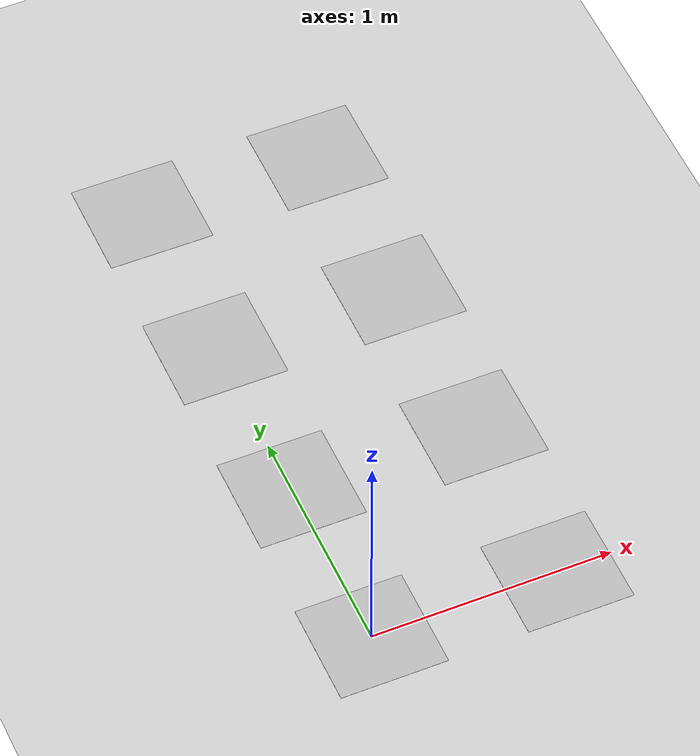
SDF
<sdf version="1.5">
 <world name="default">
  <include><uri>model://aruco_107</uri></include>
  <include><uri>model://aruco_106</uri><pose>0.77 0.0 0.0 0.0 0.0 0.0</pose></include>
  <include><uri>model://aruco_105</uri><pose>0.0 0.77 0.0 0.0 0.0 0.0</pose></include>
  <include><uri>model://aruco_104</uri><pose>0.77 0.77 0.0 0.0 0.0 0.0</pose></include>
  <include><uri>model://aruco_103</uri><pose>0.0 1.54 0.0 0.0 0.0 0.0</pose></include>
  <include><uri>model://aruco_102</uri><pose>0.77 1.54 0.0 0.0 0.0 0.0</pose></include>
  <include><uri>model://aruco_101</uri><pose>0.0 2.31 0.0 0.0 0.0 0.0</pose></include>
  <include><uri>model://aruco_100</uri><pose>0.77 2.31 0.0 0.0 0.0 0.0</pose></include>
  <include><uri>model://sun</uri></include>
  <include><uri>model://ground_plane</uri><pose>0 0 -1e-1 0 0 0</pose></include>
  <include><uri>model://asphalt_plane</uri><pose>0 0 -1e-1 0 0 0</pose></include>
  <physics name="default_physics" default="0" type="ode">
   <gravity>0 0 -9.8066</gravity>
   <ode>
    <solver>
     <type>quick</type>
     <iters>10</iters>
     <sor>1.3</sor>
     <use_dynamic_moi_rescaling>0</use_dynamic_moi_rescaling>
    </solver>
    <constraints>
     <cfm>0</cfm>
     <erp>0.2</erp>
     <contact_max_correcting_vel>100</contact_max_correcting_vel>
     <contact_surface_layer>0.001</contact_surface_layer>
    </constraints>
   </ode>
   <max_step_size>0.004</max_step_size>
   <real_time_factor>1</real_time_factor>
   <real_time_update_rate>250</real_time_update_rate>
   <magnetic_field>6.0e-6 2.3e-5 -4.2e-5</magnetic_field>
  </physics>
 </world>
</sdf>

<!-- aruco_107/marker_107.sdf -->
<sdf version="1.5">
    <model name="aruco_107">
        <static>true</static>
        <link name="marker_107_link">
            <pose>0 0 1e-3 0 0 1.5707963267948966</pose>
            <collision name="collision_marker_107">
                <geometry>
                    <box>
                        <size>0.44 0.44 1e-3</size>
                    </box>
                </geometry>
            </collision>
            <visual name="visual_marker_107">
                <cast_shadows>false</cast_shadows>
                <geometry>
                    <box>
                        <size>0.44 0.44 1e-3</size>
                    </box>
                </geometry>
                <material>
                    <script>
                        <uri>model://aruco_107/materials/scripts</uri>
                        <uri>model://aruco_107/materials/textures</uri>
                        <name>aruco/marker_107</name>
                    </script>
                </material>
            </visual>
        </link>
    </model>
</sdf>

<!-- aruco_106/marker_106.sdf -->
<sdf version="1.5">
    <model name="aruco_106">
        <static>true</static>
        <link name="marker_106_link">
            <pose>0 0 1e-3 0 0 1.5707963267948966</pose>
            <collision name="collision_marker_106">
                <geometry>
                    <box>
                        <size>0.44 0.44 1e-3</size>
                    </box>
                </geometry>
            </collision>
            <visual name="visual_marker_106">
                <cast_shadows>false</cast_shadows>
                <geometry>
                    <box>
                        <size>0.44 0.44 1e-3</size>
                    </box>
                </geometry>
                <material>
                    <script>
                        <uri>model://aruco_106/materials/scripts</uri>
                        <uri>model://aruco_106/materials/textures</uri>
                        <name>aruco/marker_106</name>
                    </script>
                </material>
            </visual>
        </link>
    </model>
</sdf>

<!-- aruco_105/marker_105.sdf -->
<sdf version="1.5">
    <model name="aruco_105">
        <static>true</static>
        <link name="marker_105_link">
            <pose>0 0 1e-3 0 0 1.5707963267948966</pose>
            <collision name="collision_marker_105">
                <geometry>
                    <box>
                        <size>0.44 0.44 1e-3</size>
                    </box>
                </geometry>
            </collision>
            <visual name="visual_marker_105">
                <cast_shadows>false</cast_shadows>
                <geometry>
                    <box>
                        <size>0.44 0.44 1e-3</size>
                    </box>
                </geometry>
                <material>
                    <script>
                        <uri>model://aruco_105/materials/scripts</uri>
                        <uri>model://aruco_105/materials/textures</uri>
                        <name>aruco/marker_105</name>
                    </script>
                </material>
            </visual>
        </link>
    </model>
</sdf>

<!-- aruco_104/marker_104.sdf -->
<sdf version="1.5">
    <model name="aruco_104">
        <static>true</static>
        <link name="marker_104_link">
            <pose>0 0 1e-3 0 0 1.5707963267948966</pose>
            <collision name="collision_marker_104">
                <geometry>
                    <box>
                        <size>0.44 0.44 1e-3</size>
                    </box>
                </geometry>
            </collision>
            <visual name="visual_marker_104">
                <cast_shadows>false</cast_shadows>
                <geometry>
                    <box>
                        <size>0.44 0.44 1e-3</size>
                    </box>
                </geometry>
                <material>
                    <script>
                        <uri>model://aruco_104/materials/scripts</uri>
                        <uri>model://aruco_104/materials/textures</uri>
                        <name>aruco/marker_104</name>
                    </script>
                </material>
            </visual>
        </link>
    </model>
</sdf>

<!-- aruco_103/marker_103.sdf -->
<sdf version="1.5">
    <model name="aruco_103">
        <static>true</static>
        <link name="marker_103_link">
            <pose>0 0 1e-3 0 0 1.5707963267948966</pose>
            <collision name="collision_marker_103">
                <geometry>
                    <box>
                        <size>0.44 0.44 1e-3</size>
                    </box>
                </geometry>
            </collision>
            <visual name="visual_marker_103">
                <cast_shadows>false</cast_shadows>
                <geometry>
                    <box>
                        <size>0.44 0.44 1e-3</size>
                    </box>
                </geometry>
                <material>
                    <script>
                        <uri>model://aruco_103/materials/scripts</uri>
                        <uri>model://aruco_103/materials/textures</uri>
                        <name>aruco/marker_103</name>
                    </script>
                </material>
            </visual>
        </link>
    </model>
</sdf>

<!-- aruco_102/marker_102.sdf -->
<sdf version="1.5">
    <model name="aruco_102">
        <static>true</static>
        <link name="marker_102_link">
            <pose>0 0 1e-3 0 0 1.5707963267948966</pose>
            <collision name="collision_marker_102">
                <geometry>
                    <box>
                        <size>0.44 0.44 1e-3</size>
                    </box>
                </geometry>
            </collision>
            <visual name="visual_marker_102">
                <cast_shadows>false</cast_shadows>
                <geometry>
                    <box>
                        <size>0.44 0.44 1e-3</size>
                    </box>
                </geometry>
                <material>
                    <script>
                        <uri>model://aruco_102/materials/scripts</uri>
                        <uri>model://aruco_102/materials/textures</uri>
                        <name>aruco/marker_102</name>
                    </script>
                </material>
            </visual>
        </link>
    </model>
</sdf>

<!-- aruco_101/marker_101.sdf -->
<sdf version="1.5">
    <model name="aruco_101">
        <static>true</static>
        <link name="marker_101_link">
            <pose>0 0 1e-3 0 0 1.5707963267948966</pose>
            <collision name="collision_marker_101">
                <geometry>
                    <box>
                        <size>0.44 0.44 1e-3</size>
                    </box>
                </geometry>
            </collision>
            <visual name="visual_marker_101">
                <cast_shadows>false</cast_shadows>
                <geometry>
                    <box>
                        <size>0.44 0.44 1e-3</size>
                    </box>
                </geometry>
                <material>
                    <script>
                        <uri>model://aruco_101/materials/scripts</uri>
                        <uri>model://aruco_101/materials/textures</uri>
                        <name>aruco/marker_101</name>
                    </script>
                </material>
            </visual>
        </link>
    </model>
</sdf>

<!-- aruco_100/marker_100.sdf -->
<sdf version="1.5">
    <model name="aruco_100">
        <static>true</static>
        <link name="marker_100_link">
            <pose>0 0 1e-3 0 0 1.5707963267948966</pose>
            <collision name="collision_marker_100">
                <geometry>
                    <box>
                        <size>0.44 0.44 1e-3</size>
                    </box>
                </geometry>
            </collision>
            <visual name="visual_marker_100">
                <cast_shadows>false</cast_shadows>
                <geometry>
                    <box>
                        <size>0.44 0.44 1e-3</size>
                    </box>
                </geometry>
                <material>
                    <script>
                        <uri>model://aruco_100/materials/scripts</uri>
                        <uri>model://aruco_100/materials/textures</uri>
                        <name>aruco/marker_100</name>
                    </script>
                </material>
            </visual>
        </link>
    </model>
</sdf>
